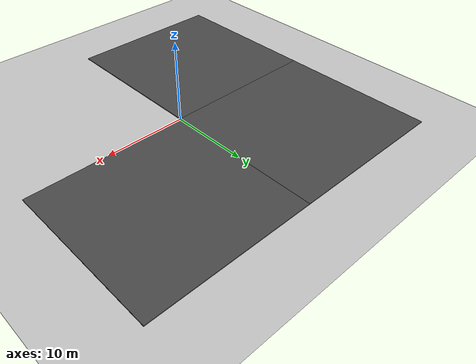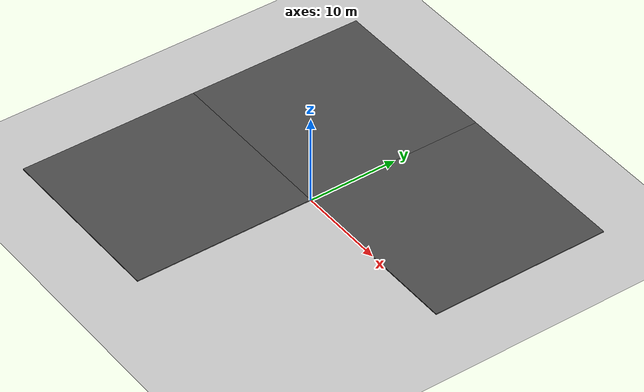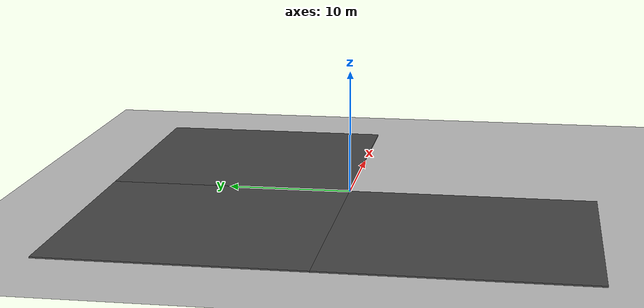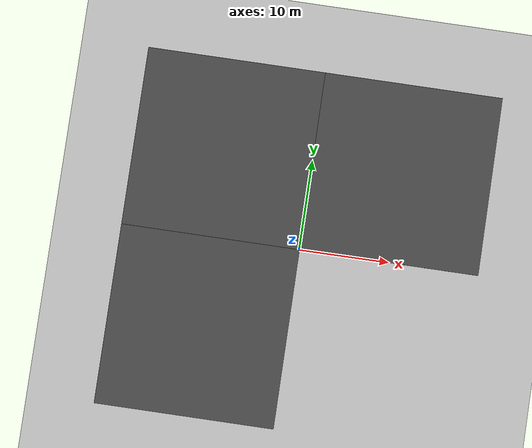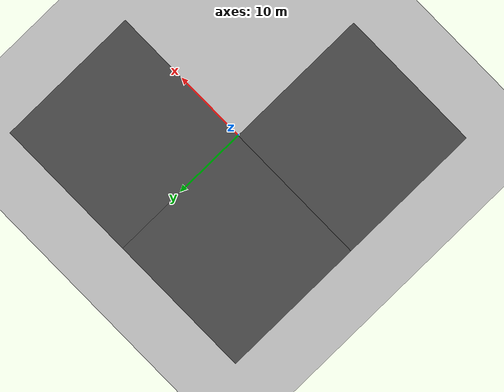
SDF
<sdf version="1.4">
 <world name="default">
  <model name="ground_plane">
   <static>1</static>
   <link name="link">
    <collision name="collision">
     <geometry><plane><normal>0 0 1</normal><size>100 100</size></plane></geometry>
     <surface><friction><ode><mu>100</mu><mu2>50</mu2></ode></friction></surface>
    </collision>
    <visual name="visual">
     <cast_shadows>0</cast_shadows>
     <geometry><plane><normal>0 0 1</normal><size>100 100</size></plane></geometry>
     <material>
      <script><uri>file://media/materials/scripts/gazebo.material</uri><name>Gazebo/Grey</name></script>
     </material>
    </visual>
    <velocity_decay><linear>0</linear><angular>0</angular></velocity_decay>
   </link>
  </model>
  <model name="asphalt_plane">
   <static>1</static>
   <link name="link">
    <collision name="collision"><geometry><box><size>20 20 0.1</size></box></geometry></collision>
    <visual name="visual">
     <cast_shadows>0</cast_shadows>
     <geometry><box><size>20 20 0.1</size></box></geometry>
     <material>
      <script>
       <uri>model://asphalt_plane/materials/scripts</uri>
       <uri>model://asphalt_plane/materials/textures</uri>
       <name>vrc/asphalt</name>
      </script>
     </material>
    </visual>
    <velocity_decay><linear>0</linear><angular>0</angular></velocity_decay>
   </link>
   <pose>-10 -10 0 0 -0 0</pose>
  </model>
  <model name="asphalt_plane_0">
   <static>1</static>
   <link name="link">
    <collision name="collision"><geometry><box><size>20 20 0.1</size></box></geometry></collision>
    <visual name="visual">
     <cast_shadows>0</cast_shadows>
     <geometry><box><size>20 20 0.1</size></box></geometry>
     <material>
      <script>
       <uri>model://asphalt_plane/materials/scripts</uri>
       <uri>model://asphalt_plane/materials/textures</uri>
       <name>vrc/asphalt</name>
      </script>
     </material>
    </visual>
    <velocity_decay><linear>0</linear><angular>0</angular></velocity_decay>
   </link>
   <pose>-10 10 0 0 -0 0</pose>
  </model>
  <model name="asphalt_plane_2">
   <static>1</static>
   <link name="link">
    <collision name="collision"><geometry><box><size>20 20 0.1</size></box></geometry></collision>
    <visual name="visual">
     <cast_shadows>0</cast_shadows>
     <geometry><box><size>20 20 0.1</size></box></geometry>
     <material>
      <script>
       <uri>model://asphalt_plane/materials/scripts</uri>
       <uri>model://asphalt_plane/materials/textures</uri>
       <name>vrc/asphalt</name>
      </script>
     </material>
    </visual>
    <velocity_decay><linear>0</linear><angular>0</angular></velocity_decay>
   </link>
   <pose>10 10 0 0 -0 0</pose>
  </model>
 </world>
</sdf>
